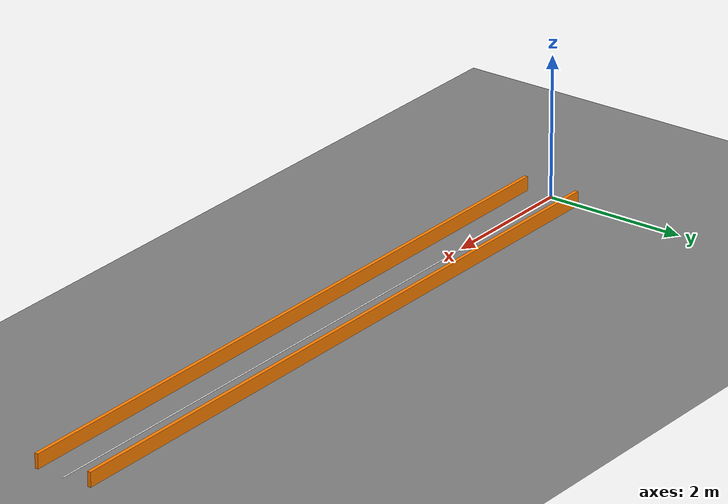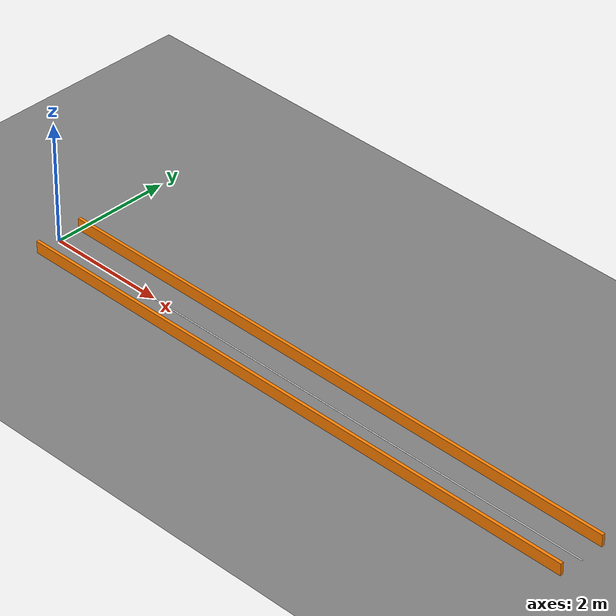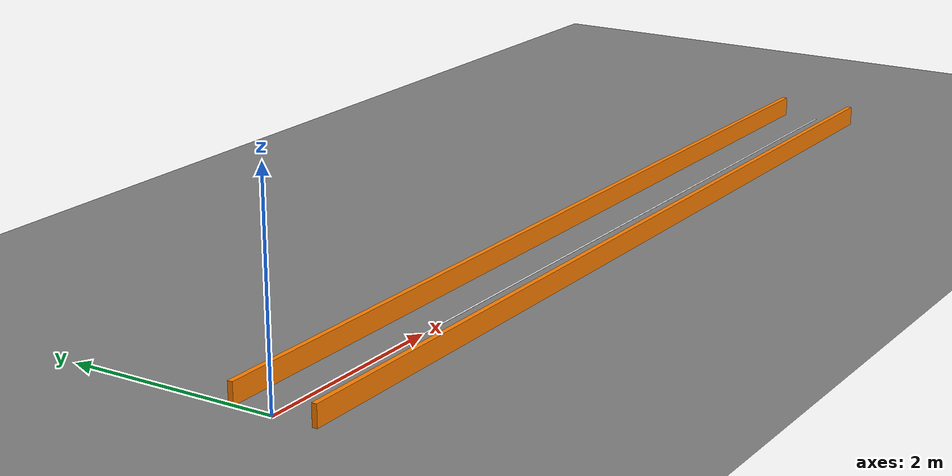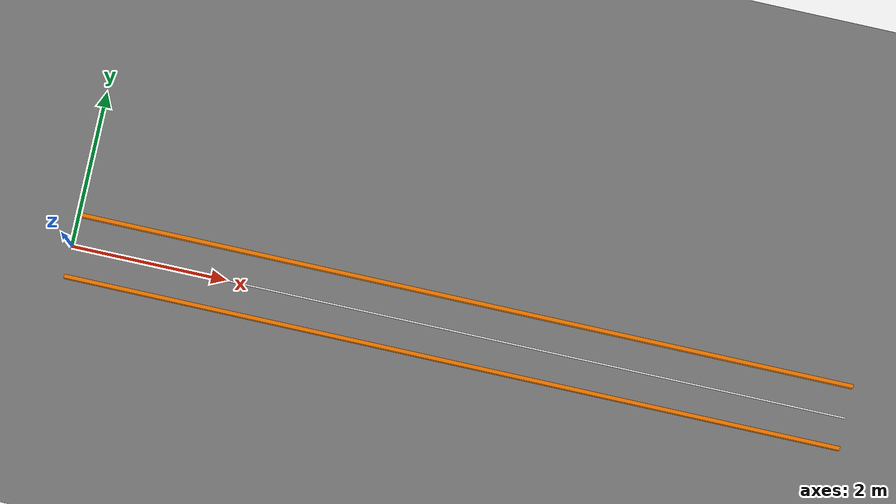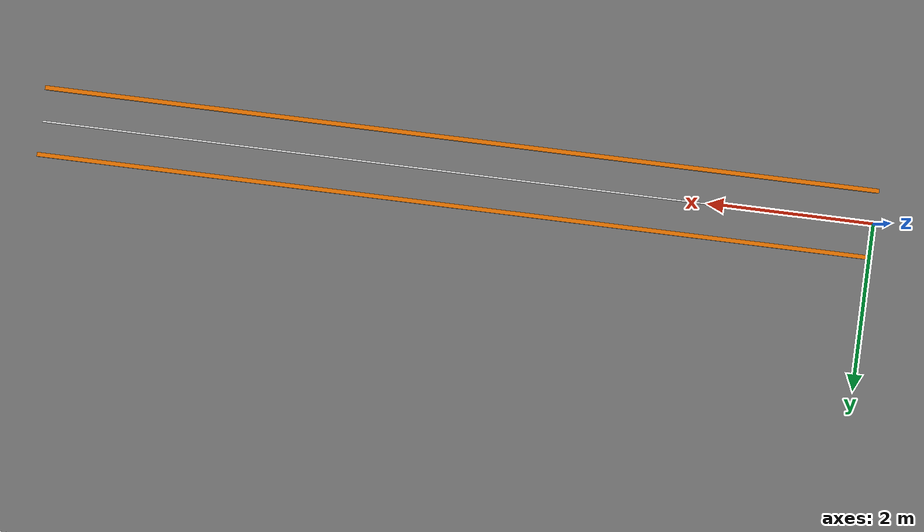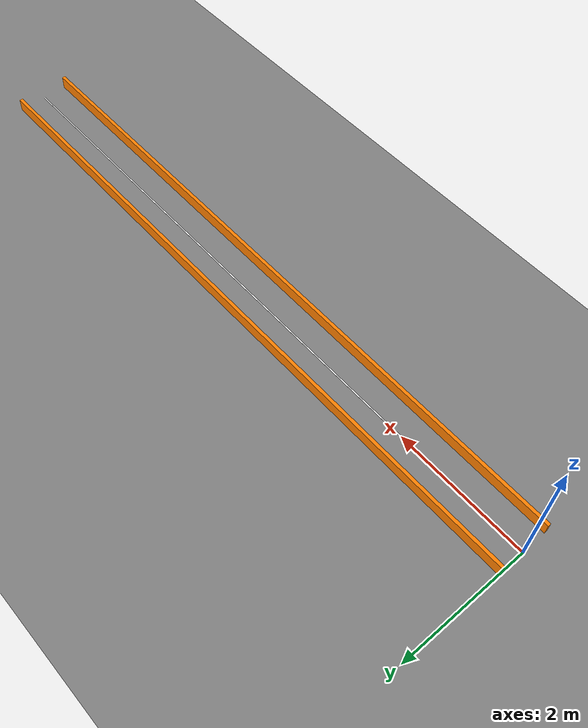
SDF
<?xml version="1.0" ?>
<sdf version="1.9">
  <world name="empty_track">
    <!-- Required Physics and Render Plugins for Modern Gazebo -->
    <physics name="1ms" type="ignored">
      <max_step_size>0.001</max_step_size>
      <real_time_factor>1.0</real_time_factor>
    </physics>
    <plugin filename="gz-sim-physics-system" name="gz::sim::systems::Physics" />
    <plugin filename="gz-sim-user-commands-system" name="gz::sim::systems::UserCommands" />
    <plugin filename="gz-sim-scene-broadcaster-system" name="gz::sim::systems::SceneBroadcaster" />

    <!-- Global Light Source -->
    <light type="directional" name="sun">
      <cast_shadows>true</cast_shadows>
      <pose>0 0 10 0 0 0</pose>
      <diffuse>0.8 0.8 0.8 1</diffuse>
      <specular>0.2 0.2 0.2 1</specular>
      <direction>-0.5 0.1 -0.9</direction>
    </light>

    <!-- Ground Plane -->
    <model name="ground_plane">
      <static>true</static>
      <link name="link">
        <collision name="collision">
          <geometry>
            <plane>
              <normal>0 0 1</normal>
              <size>20 20</size>
            </plane>
          </geometry>
        </collision>
        <visual name="visual">
          <geometry>
            <plane>
              <normal>0 0 1</normal>
              <size>20 20</size>
            </plane>
          </geometry>
          <material>
            <ambient>0.5 0.5 0.5 1</ambient>
            <diffuse>0.5 0.5 0.5 1</diffuse>
          </material>
        </visual>
      </link>
    </model>

    <!-- Track 01: 2-Lane Track (10m x 0.75m) -->
    <model name="track_01">
      <static>true</static>

      <!-- Left Wall -->
      <!-- Centered at X=5 to make it 10m long from 0 to 10 -->
      <!-- Placed at Y=0.4m. With a 0.05m thickness, the inner edge is at 0.375m -->
      <link name="left_wall">
        <pose>5 0.4 0.1 0 0 0</pose>
        <collision name="collision">
          <geometry>
            <box><size>10 0.05 0.2</size></box>
          </geometry>
        </collision>
        <visual name="visual">
          <geometry>
            <box><size>10 0.05 0.2</size></box>
          </geometry>
          <material>
            <ambient>1 0.5 0 1</ambient> <!-- Orange color for visibility -->
            <diffuse>1 0.5 0 1</diffuse>
          </material>
        </visual>
      </link>

      <!-- Right Wall -->
      <!-- Placed at Y=-0.4m. Inner edge is at -0.375m -->
      <link name="right_wall">
        <pose>5 -0.4 0.1 0 0 0</pose>
        <collision name="collision">
          <geometry>
            <box><size>10 0.05 0.2</size></box>
          </geometry>
        </collision>
        <visual name="visual">
          <geometry>
            <box><size>10 0.05 0.2</size></box>
          </geometry>
          <material>
            <ambient>1 0.5 0 1</ambient>
            <diffuse>1 0.5 0 1</diffuse>
          </material>
        </visual>
      </link>

      <!-- Center Lane Divider (Visual Only, No Collision) -->
      <link name="center_line">
        <pose>5 0 0.001 0 0 0</pose>
        <visual name="visual">
          <geometry>
            <box><size>10 0.02 0.001</size></box>
          </geometry>
          <material>
            <ambient>1 1 1 1</ambient> <!-- White line -->
            <diffuse>1 1 1 1</diffuse>
          </material>
        </visual>
      </link>

    </model>
  </world>
</sdf>
